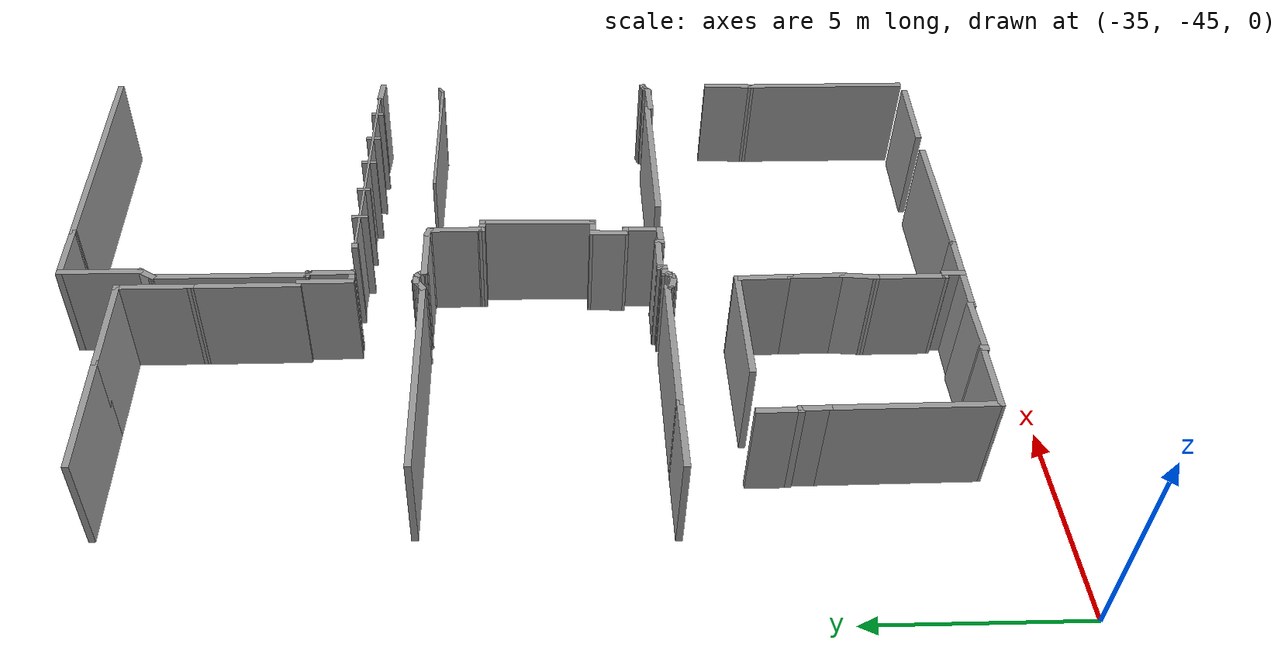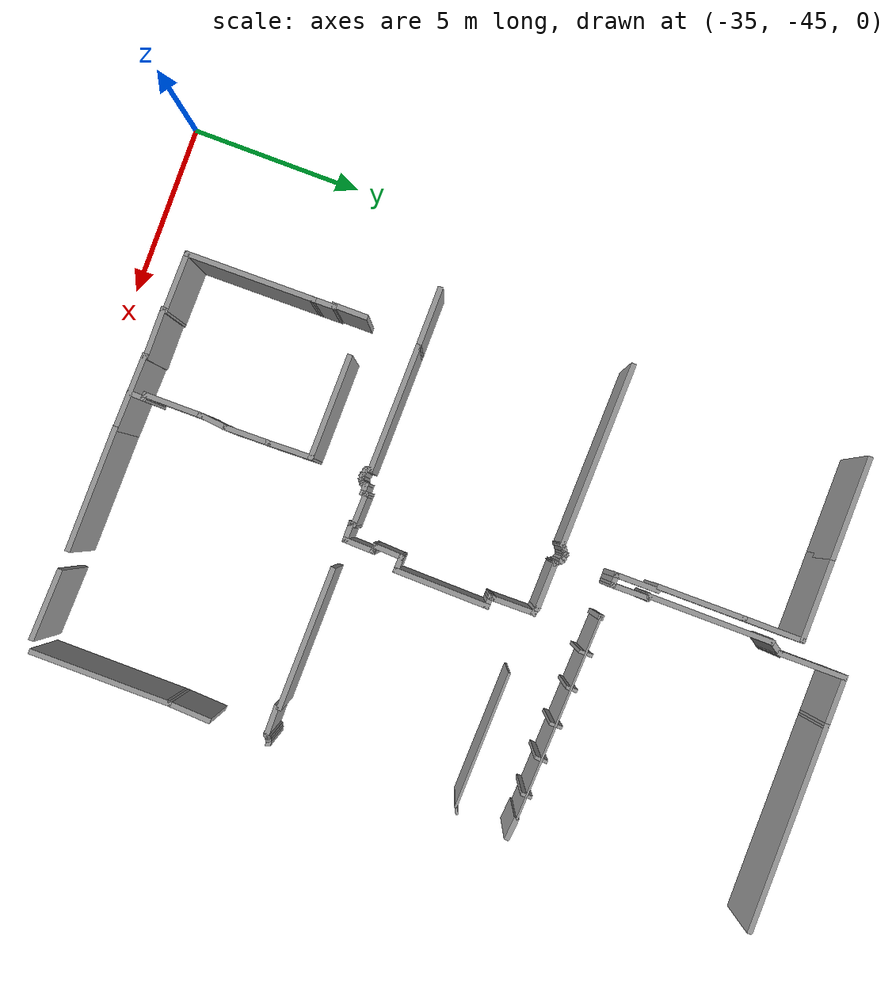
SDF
<sdf version="1.6">
 <model name="3_north">
  <pose>-14.229 -33.4428 0 0 -0 0</pose>
  <link name="Wall_10">
   <collision name="Wall_10_Collision">
    <geometry><box><size>1.85385 0.15 2.5</size></box></geometry>
    <pose>0 0 1.25 0 -0 0</pose>
   </collision>
   <visual name="Wall_10_Visual">
    <pose>0 0 1.25 0 -0 0</pose>
    <geometry><box><size>1.85385 0.15 2.5</size></box></geometry>
    <material>
     <script><uri>file://media/materials/scripts/gazebo.material</uri><name>Gazebo/Grey</name></script>
     <ambient>1 1 1 1</ambient>
    </material>
   </visual>
   <pose>-12.9757 8.5661 0 0 0 -1.57577</pose>
  </link>
  <link name="Wall_12">
   <collision name="Wall_12_Collision">
    <geometry><box><size>2.5971 0.15 2.5</size></box></geometry>
    <pose>0 0 1.25 0 -0 0</pose>
   </collision>
   <visual name="Wall_12_Visual">
    <pose>0 0 1.25 0 -0 0</pose>
    <geometry><box><size>2.5971 0.15 2.5</size></box></geometry>
    <material>
     <script><uri>file://media/materials/scripts/gazebo.material</uri><name>Gazebo/Grey</name></script>
     <ambient>1 1 1 1</ambient>
    </material>
   </visual>
   <pose>-12.98 6.49063 0 0 0 -1.5708</pose>
  </link>
  <link name="Wall_15">
   <collision name="Wall_15_Collision">
    <geometry><box><size>1.33926 0.15 2.5</size></box></geometry>
    <pose>0 0 1.25 0 -0 0</pose>
   </collision>
   <visual name="Wall_15_Visual">
    <pose>0 0 1.25 0 -0 0</pose>
    <geometry><box><size>1.33926 0.15 2.5</size></box></geometry>
    <material>
     <script><uri>file://media/materials/scripts/gazebo.material</uri><name>Gazebo/Grey</name></script>
     <ambient>1 1 1 1</ambient>
    </material>
   </visual>
   <pose>-12.8828 4.64959 0 0 0 -1.5708</pose>
  </link>
  <link name="Wall_16">
   <collision name="Wall_16_Collision">
    <geometry><box><size>0.447312 0.15 2.5</size></box></geometry>
    <pose>0 0 1.25 0 -0 0</pose>
   </collision>
   <visual name="Wall_16_Visual">
    <pose>0 0 1.25 0 -0 0</pose>
    <geometry><box><size>0.447312 0.15 2.5</size></box></geometry>
    <material>
     <script><uri>file://media/materials/scripts/gazebo.material</uri><name>Gazebo/Grey</name></script>
     <ambient>1 1 1 1</ambient>
    </material>
   </visual>
   <pose>-12.7341 4.05497 0 0 -0 0</pose>
  </link>
  <link name="Wall_17">
   <collision name="Wall_17_Collision">
    <geometry><box><size>1.15635 0.15 2.5</size></box></geometry>
    <pose>0 0 1.25 0 -0 0</pose>
   </collision>
   <visual name="Wall_17_Visual">
    <pose>0 0 1.25 0 -0 0</pose>
    <geometry><box><size>1.15635 0.15 2.5</size></box></geometry>
    <material>
     <script><uri>file://media/materials/scripts/gazebo.material</uri><name>Gazebo/Grey</name></script>
     <ambient>1 1 1 1</ambient>
    </material>
   </visual>
   <pose>-12.5883 4.55811 0 0 -0 1.57648</pose>
  </link>
  <link name="Wall_18">
   <collision name="Wall_18_Collision">
    <geometry><box><size>0.21738 0.15 2.5</size></box></geometry>
    <pose>0 0 1.25 0 -0 0</pose>
   </collision>
   <visual name="Wall_18_Visual">
    <pose>0 0 1.25 0 -0 0</pose>
    <geometry><box><size>0.21738 0.15 2.5</size></box></geometry>
    <material>
     <script><uri>file://media/materials/scripts/gazebo.material</uri><name>Gazebo/Grey</name></script>
     <ambient>1 1 1 1</ambient>
    </material>
   </visual>
   <pose>-12.6222 5.0744 0 0 -0 2.7406</pose>
  </link>
  <link name="Wall_19">
   <collision name="Wall_19_Collision">
    <geometry><box><size>3.70529 0.15 2.5</size></box></geometry>
    <pose>0 0 1.25 0 -0 0</pose>
   </collision>
   <visual name="Wall_19_Visual">
    <pose>0 0 1.25 0 -0 0</pose>
    <geometry><box><size>3.70529 0.15 2.5</size></box></geometry>
    <material>
     <script><uri>file://media/materials/scripts/gazebo.material</uri><name>Gazebo/Grey</name></script>
     <ambient>1 1 1 1</ambient>
    </material>
   </visual>
   <pose>-12.645 6.87177 0 0 -0 1.56616</pose>
  </link>
  <link name="Wall_21">
   <collision name="Wall_21_Collision">
    <geometry><box><size>0.537571 0.15 2.5</size></box></geometry>
    <pose>0 0 1.25 0 -0 0</pose>
   </collision>
   <visual name="Wall_21_Visual">
    <pose>0 0 1.25 0 -0 0</pose>
    <geometry><box><size>0.537571 0.15 2.5</size></box></geometry>
    <material>
     <script><uri>file://media/materials/scripts/gazebo.material</uri><name>Gazebo/Grey</name></script>
     <ambient>1 1 1 1</ambient>
    </material>
   </visual>
   <pose>-12.5295 8.81082 0 0 -0 0.984451</pose>
  </link>
  <link name="Wall_217">
   <collision name="Wall_217_Collision">
    <geometry><box><size>1.30874 0.15 2.5</size></box></geometry>
    <pose>0 0 1.25 0 -0 0</pose>
   </collision>
   <visual name="Wall_217_Visual">
    <pose>0 0 1.25 0 -0 0</pose>
    <geometry><box><size>1.30874 0.15 2.5</size></box></geometry>
    <material>
     <script><uri>file://media/materials/scripts/gazebo.material</uri><name>Gazebo/Grey</name></script>
     <ambient>1 1 1 1</ambient>
    </material>
   </visual>
   <pose>-5.35943 -5.56323 0 0 0 -1.62189</pose>
  </link>
  <link name="Wall_219">
   <collision name="Wall_219_Collision">
    <geometry><box><size>4.12839 0.15 2.5</size></box></geometry>
    <pose>0 0 1.25 0 -0 0</pose>
   </collision>
   <visual name="Wall_219_Visual">
    <pose>0 0 1.25 0 -0 0</pose>
    <geometry><box><size>4.12839 0.15 2.5</size></box></geometry>
    <material>
     <script><uri>file://media/materials/scripts/gazebo.material</uri><name>Gazebo/Grey</name></script>
     <ambient>1 1 1 1</ambient>
    </material>
   </visual>
   <pose>-5.39792 -8.13102 0 0 0 -1.57527</pose>
  </link>
  <link name="Wall_22">
   <collision name="Wall_22_Collision">
    <geometry><box><size>2.0167 0.15 2.5</size></box></geometry>
    <pose>0 0 1.25 0 -0 0</pose>
   </collision>
   <visual name="Wall_22_Visual">
    <pose>0 0 1.25 0 -0 0</pose>
    <geometry><box><size>2.0167 0.15 2.5</size></box></geometry>
    <material>
     <script><uri>file://media/materials/scripts/gazebo.material</uri><name>Gazebo/Grey</name></script>
     <ambient>1 1 1 1</ambient>
    </material>
   </visual>
   <pose>-12.4276 9.89901 0 0 -0 1.56944</pose>
  </link>
  <link name="Wall_223">
   <collision name="Wall_223_Collision">
    <geometry><box><size>2.09476 0.15 2.5</size></box></geometry>
    <pose>0 0 1.25 0 -0 0</pose>
   </collision>
   <visual name="Wall_223_Visual">
    <pose>0 0 1.25 0 -0 0</pose>
    <geometry><box><size>2.09476 0.15 2.5</size></box></geometry>
    <material>
     <script><uri>file://media/materials/scripts/gazebo.material</uri><name>Gazebo/Grey</name></script>
     <ambient>1 1 1 1</ambient>
    </material>
   </visual>
   <pose>-6.73842 -10.2062 0 0 -0 3.10659</pose>
  </link>
  <link name="Wall_225">
   <collision name="Wall_225_Collision">
    <geometry><box><size>3.64378 0.15 2.5</size></box></geometry>
    <pose>0 0 1.25 0 -0 0</pose>
   </collision>
   <visual name="Wall_225_Visual">
    <pose>0 0 1.25 0 -0 0</pose>
    <geometry><box><size>3.64378 0.15 2.5</size></box></geometry>
    <material>
     <script><uri>file://media/materials/scripts/gazebo.material</uri><name>Gazebo/Grey</name></script>
     <ambient>1 1 1 1</ambient>
    </material>
   </visual>
   <pose>-10.1222 -10.1306 0 0 -0 3.12644</pose>
  </link>
  <link name="Wall_227">
   <collision name="Wall_227_Collision">
    <geometry><box><size>2.25295 0.15 2.5</size></box></geometry>
    <pose>0 0 1.25 0 -0 0</pose>
   </collision>
   <visual name="Wall_227_Visual">
    <pose>0 0 1.25 0 -0 0</pose>
    <geometry><box><size>2.25295 0.15 2.5</size></box></geometry>
    <material>
     <script><uri>file://media/materials/scripts/gazebo.material</uri><name>Gazebo/Grey</name></script>
     <ambient>1 1 1 1</ambient>
    </material>
   </visual>
   <pose>-12.9577 -10.0663 0 0 -0 3.11282</pose>
  </link>
  <link name="Wall_228">
   <collision name="Wall_228_Collision">
    <geometry><box><size>0.187807 0.15 2.5</size></box></geometry>
    <pose>0 0 1.25 0 -0 0</pose>
   </collision>
   <visual name="Wall_228_Visual">
    <pose>0 0 1.25 0 -0 0</pose>
    <geometry><box><size>0.187807 0.15 2.5</size></box></geometry>
    <material>
     <script><uri>file://media/materials/scripts/gazebo.material</uri><name>Gazebo/Grey</name></script>
     <ambient>1 1 1 1</ambient>
    </material>
   </visual>
   <pose>-14.0087 -10.0172 0 0 -0 1.5708</pose>
  </link>
  <link name="Wall_229">
   <collision name="Wall_229_Collision">
    <geometry><box><size>1.5035 0.15 2.5</size></box></geometry>
    <pose>0 0 1.25 0 -0 0</pose>
   </collision>
   <visual name="Wall_229_Visual">
    <pose>0 0 1.25 0 -0 0</pose>
    <geometry><box><size>1.5035 0.15 2.5</size></box></geometry>
    <material>
     <script><uri>file://media/materials/scripts/gazebo.material</uri><name>Gazebo/Grey</name></script>
     <ambient>1 1 1 1</ambient>
    </material>
   </visual>
   <pose>-14.6855 -9.99828 0 0 -0 3.14159</pose>
  </link>
  <link name="Wall_230">
   <collision name="Wall_230_Collision">
    <geometry><box><size>0.20293 0.15 2.5</size></box></geometry>
    <pose>0 0 1.25 0 -0 0</pose>
   </collision>
   <visual name="Wall_230_Visual">
    <pose>0 0 1.25 0 -0 0</pose>
    <geometry><box><size>0.20293 0.15 2.5</size></box></geometry>
    <material>
     <script><uri>file://media/materials/scripts/gazebo.material</uri><name>Gazebo/Grey</name></script>
     <ambient>1 1 1 1</ambient>
    </material>
   </visual>
   <pose>-15.3622 -9.97182 0 0 -0 1.5708</pose>
  </link>
  <link name="Wall_231">
   <collision name="Wall_231_Collision">
    <geometry><box><size>1.79867 0.15 2.5</size></box></geometry>
    <pose>0 0 1.25 0 -0 0</pose>
   </collision>
   <visual name="Wall_231_Visual">
    <pose>0 0 1.25 0 -0 0</pose>
    <geometry><box><size>1.79867 0.15 2.5</size></box></geometry>
    <material>
     <script><uri>file://media/materials/scripts/gazebo.material</uri><name>Gazebo/Grey</name></script>
     <ambient>1 1 1 1</ambient>
    </material>
   </visual>
   <pose>-16.1864 -9.93023 0 0 -0 3.12325</pose>
  </link>
  <link name="Wall_232">
   <collision name="Wall_232_Collision">
    <geometry><box><size>3.79474 0.15 2.5</size></box></geometry>
    <pose>0 0 1.25 0 -0 0</pose>
   </collision>
   <visual name="Wall_232_Visual">
    <pose>0 0 1.25 0 -0 0</pose>
    <geometry><box><size>3.79474 0.15 2.5</size></box></geometry>
    <material>
     <script><uri>file://media/materials/scripts/gazebo.material</uri><name>Gazebo/Grey</name></script>
     <ambient>1 1 1 1</ambient>
    </material>
   </visual>
   <pose>-17.0258 -8.0928 0 0 -0 1.57909</pose>
  </link>
  <link name="Wall_234">
   <collision name="Wall_234_Collision">
    <geometry><box><size>0.739841 0.15 2.5</size></box></geometry>
    <pose>0 0 1.25 0 -0 0</pose>
   </collision>
   <visual name="Wall_234_Visual">
    <pose>0 0 1.25 0 -0 0</pose>
    <geometry><box><size>0.739841 0.15 2.5</size></box></geometry>
    <material>
     <script><uri>file://media/materials/scripts/gazebo.material</uri><name>Gazebo/Grey</name></script>
     <ambient>1 1 1 1</ambient>
    </material>
   </visual>
   <pose>-17.0447 -5.9756 0 0 -0 1.58362</pose>
  </link>
  <link name="Wall_235">
   <collision name="Wall_235_Collision">
    <geometry><box><size>0.187807 0.15 2.5</size></box></geometry>
    <pose>0 0 1.25 0 -0 0</pose>
   </collision>
   <visual name="Wall_235_Visual">
    <pose>0 0 1.25 0 -0 0</pose>
    <geometry><box><size>0.187807 0.15 2.5</size></box></geometry>
    <material>
     <script><uri>file://media/materials/scripts/gazebo.material</uri><name>Gazebo/Grey</name></script>
     <ambient>1 1 1 1</ambient>
    </material>
   </visual>
   <pose>-17.0673 -5.6807 0 0 -0 3.14159</pose>
  </link>
  <link name="Wall_236">
   <collision name="Wall_236_Collision">
    <geometry><box><size>1.04225 0.15 2.5</size></box></geometry>
    <pose>0 0 1.25 0 -0 0</pose>
   </collision>
   <visual name="Wall_236_Visual">
    <pose>0 0 1.25 0 -0 0</pose>
    <geometry><box><size>1.04225 0.15 2.5</size></box></geometry>
    <material>
     <script><uri>file://media/materials/scripts/gazebo.material</uri><name>Gazebo/Grey</name></script>
     <ambient>1 1 1 1</ambient>
    </material>
   </visual>
   <pose>-17.0862 -5.23458 0 0 -0 1.5708</pose>
  </link>
  <link name="Wall_238">
   <collision name="Wall_238_Collision">
    <geometry><box><size>3.06131 0.15 2.5</size></box></geometry>
    <pose>0 0 1.25 0 -0 0</pose>
   </collision>
   <visual name="Wall_238_Visual">
    <pose>0 0 1.25 0 -0 0</pose>
    <geometry><box><size>3.06131 0.15 2.5</size></box></geometry>
    <material>
     <script><uri>file://media/materials/scripts/gazebo.material</uri><name>Gazebo/Grey</name></script>
     <ambient>1 1 1 1</ambient>
    </material>
   </visual>
   <pose>-14.4511 -4.82626 0 0 0 -0.010389</pose>
  </link>
  <link name="Wall_239">
   <collision name="Wall_239_Collision">
    <geometry><box><size>1.37533 0.15 2.5</size></box></geometry>
    <pose>0 0 1.25 0 -0 0</pose>
   </collision>
   <visual name="Wall_239_Visual">
    <pose>0 0 1.25 0 -0 0</pose>
    <geometry><box><size>1.37533 0.15 2.5</size></box></geometry>
    <material>
     <script><uri>file://media/materials/scripts/gazebo.material</uri><name>Gazebo/Grey</name></script>
     <ambient>1 1 1 1</ambient>
    </material>
   </visual>
   <pose>-12.9804 -5.45386 0 0 0 -1.54611</pose>
  </link>
  <link name="Wall_24">
   <collision name="Wall_24_Collision">
    <geometry><box><size>1.57682 0.15 2.5</size></box></geometry>
    <pose>0 0 1.25 0 -0 0</pose>
   </collision>
   <visual name="Wall_24_Visual">
    <pose>0 0 1.25 0 -0 0</pose>
    <geometry><box><size>1.57682 0.15 2.5</size></box></geometry>
    <material>
     <script><uri>file://media/materials/scripts/gazebo.material</uri><name>Gazebo/Grey</name></script>
     <ambient>1 1 1 1</ambient>
    </material>
   </visual>
   <pose>-11.7195 10.8291 0 0 0 -0.004608</pose>
  </link>
  <link name="Wall_241">
   <collision name="Wall_241_Collision">
    <geometry><box><size>1.36749 0.15 2.5</size></box></geometry>
    <pose>0 0 1.25 0 -0 0</pose>
   </collision>
   <visual name="Wall_241_Visual">
    <pose>0 0 1.25 0 -0 0</pose>
    <geometry><box><size>1.36749 0.15 2.5</size></box></geometry>
    <material>
     <script><uri>file://media/materials/scripts/gazebo.material</uri><name>Gazebo/Grey</name></script>
     <ambient>1 1 1 1</ambient>
    </material>
   </visual>
   <pose>-12.9577 -6.67503 0 0 0 -1.55838</pose>
  </link>
  <link name="Wall_243">
   <collision name="Wall_243_Collision">
    <geometry><box><size>0.917439 0.15 2.5</size></box></geometry>
    <pose>0 0 1.25 0 -0 0</pose>
   </collision>
   <visual name="Wall_243_Visual">
    <pose>0 0 1.25 0 -0 0</pose>
    <geometry><box><size>0.917439 0.15 2.5</size></box></geometry>
    <material>
     <script><uri>file://media/materials/scripts/gazebo.material</uri><name>Gazebo/Grey</name></script>
     <ambient>1 1 1 1</ambient>
    </material>
   </visual>
   <pose>-12.9879 -7.66558 0 0 0 -1.66949</pose>
  </link>
  <link name="Wall_244">
   <collision name="Wall_244_Collision">
    <geometry><box><size>1.75303 0.15 2.5</size></box></geometry>
    <pose>0 0 1.25 0 -0 0</pose>
   </collision>
   <visual name="Wall_244_Visual">
    <pose>0 0 1.25 0 -0 0</pose>
    <geometry><box><size>1.75303 0.15 2.5</size></box></geometry>
    <material>
     <script><uri>file://media/materials/scripts/gazebo.material</uri><name>Gazebo/Grey</name></script>
     <ambient>1 1 1 1</ambient>
    </material>
   </visual>
   <pose>-13.0258 -8.84895 0 0 0 -1.5708</pose>
  </link>
  <link name="Wall_245">
   <collision name="Wall_245_Collision">
    <geometry><box><size>0.25613 0.15 2.5</size></box></geometry>
    <pose>0 0 1.25 0 -0 0</pose>
   </collision>
   <visual name="Wall_245_Visual">
    <pose>0 0 1.25 0 -0 0</pose>
    <geometry><box><size>0.25613 0.15 2.5</size></box></geometry>
    <material>
     <script><uri>file://media/materials/scripts/gazebo.material</uri><name>Gazebo/Grey</name></script>
     <ambient>1 1 1 1</ambient>
    </material>
   </visual>
   <pose>-12.9728 -9.65424 0 0 0 -0.071307</pose>
  </link>
  <link name="Wall_246">
   <collision name="Wall_246_Collision">
    <geometry><box><size>0.565948 0.15 2.5</size></box></geometry>
    <pose>0 0 1.25 0 -0 0</pose>
   </collision>
   <visual name="Wall_246_Visual">
    <pose>0 0 1.25 0 -0 0</pose>
    <geometry><box><size>0.565948 0.15 2.5</size></box></geometry>
    <material>
     <script><uri>file://media/materials/scripts/gazebo.material</uri><name>Gazebo/Grey</name></script>
     <ambient>1 1 1 1</ambient>
    </material>
   </visual>
   <pose>-12.9237 -9.86596 0 0 0 -1.58898</pose>
  </link>
  <link name="Wall_26">
   <collision name="Wall_26_Collision">
    <geometry><box><size>6.08081 0.15 2.5</size></box></geometry>
    <pose>0 0 1.25 0 -0 0</pose>
   </collision>
   <visual name="Wall_26_Visual">
    <pose>0 0 1.25 0 -0 0</pose>
    <geometry><box><size>6.08081 0.15 2.5</size></box></geometry>
    <material>
     <script><uri>file://media/materials/scripts/gazebo.material</uri><name>Gazebo/Grey</name></script>
     <ambient>1 1 1 1</ambient>
    </material>
   </visual>
   <pose>-8.04069 10.8225 0 0 0 -0.001109</pose>
  </link>
  <link name="Wall_329">
   <collision name="Wall_329_Collision">
    <geometry><box><size>5.35367 0.15 2.5</size></box></geometry>
    <pose>0 0 1.25 0 -0 0</pose>
   </collision>
   <visual name="Wall_329_Visual">
    <pose>0 0 1.25 0 -0 0</pose>
    <geometry><box><size>5.35367 0.15 2.5</size></box></geometry>
    <material>
     <script><uri>file://media/materials/scripts/gazebo.material</uri><name>Gazebo/Grey</name></script>
     <ambient>1 1 1 1</ambient>
    </material>
   </visual>
   <pose>-15.7561 2.45326 0 0 0 -0.020346</pose>
  </link>
  <link name="Wall_331">
   <collision name="Wall_331_Collision">
    <geometry><box><size>0.307343 0.15 2.5</size></box></geometry>
    <pose>0 0 1.25 0 -0 0</pose>
   </collision>
   <visual name="Wall_331_Visual">
    <pose>0 0 1.25 0 -0 0</pose>
    <geometry><box><size>0.307343 0.15 2.5</size></box></geometry>
    <material>
     <script><uri>file://media/materials/scripts/gazebo.material</uri><name>Gazebo/Grey</name></script>
     <ambient>1 1 1 1</ambient>
    </material>
   </visual>
   <pose>-13.0907 2.44569 0 0 -0 0.614663</pose>
  </link>
  <link name="Wall_332">
   <collision name="Wall_332_Collision">
    <geometry><box><size>0.269557 0.15 2.5</size></box></geometry>
    <pose>0 0 1.25 0 -0 0</pose>
   </collision>
   <visual name="Wall_332_Visual">
    <pose>0 0 1.25 0 -0 0</pose>
    <geometry><box><size>0.269557 0.15 2.5</size></box></geometry>
    <material>
     <script><uri>file://media/materials/scripts/gazebo.material</uri><name>Gazebo/Grey</name></script>
     <ambient>1 1 1 1</ambient>
    </material>
   </visual>
   <pose>-12.9773 2.52509 0 0 -0 0.605545</pose>
  </link>
  <link name="Wall_333">
   <collision name="Wall_333_Collision">
    <geometry><box><size>0.233176 0.15 2.5</size></box></geometry>
    <pose>0 0 1.25 0 -0 0</pose>
   </collision>
   <visual name="Wall_333_Visual">
    <pose>0 0 1.25 0 -0 0</pose>
    <geometry><box><size>0.233176 0.15 2.5</size></box></geometry>
    <material>
     <script><uri>file://media/materials/scripts/gazebo.material</uri><name>Gazebo/Grey</name></script>
     <ambient>1 1 1 1</ambient>
    </material>
   </visual>
   <pose>-12.8866 2.55912 0 0 -0 0</pose>
  </link>
  <link name="Wall_334">
   <collision name="Wall_334_Collision">
    <geometry><box><size>0.276753 0.15 2.5</size></box></geometry>
    <pose>0 0 1.25 0 -0 0</pose>
   </collision>
   <visual name="Wall_334_Visual">
    <pose>0 0 1.25 0 -0 0</pose>
    <geometry><box><size>0.276753 0.15 2.5</size></box></geometry>
    <material>
     <script><uri>file://media/materials/scripts/gazebo.material</uri><name>Gazebo/Grey</name></script>
     <ambient>1 1 1 1</ambient>
    </material>
   </visual>
   <pose>-12.7845 2.54021 0 0 0 -0.302885</pose>
  </link>
  <link name="Wall_335">
   <collision name="Wall_335_Collision">
    <geometry><box><size>0.268113 0.15 2.5</size></box></geometry>
    <pose>0 0 1.25 0 -0 0</pose>
   </collision>
   <visual name="Wall_335_Visual">
    <pose>0 0 1.25 0 -0 0</pose>
    <geometry><box><size>0.268113 0.15 2.5</size></box></geometry>
    <material>
     <script><uri>file://media/materials/scripts/gazebo.material</uri><name>Gazebo/Grey</name></script>
     <ambient>1 1 1 1</ambient>
    </material>
   </visual>
   <pose>-12.6862 2.47594 0 0 0 -0.876058</pose>
  </link>
  <link name="Wall_336">
   <collision name="Wall_336_Collision">
    <geometry><box><size>0.204526 0.15 2.5</size></box></geometry>
    <pose>0 0 1.25 0 -0 0</pose>
   </collision>
   <visual name="Wall_336_Visual">
    <pose>0 0 1.25 0 -0 0</pose>
    <geometry><box><size>0.204526 0.15 2.5</size></box></geometry>
    <material>
     <script><uri>file://media/materials/scripts/gazebo.material</uri><name>Gazebo/Grey</name></script>
     <ambient>1 1 1 1</ambient>
    </material>
   </visual>
   <pose>-12.6333 2.40789 0 0 0 -0.982794</pose>
  </link>
  <link name="Wall_337">
   <collision name="Wall_337_Collision">
    <geometry><box><size>1.48872 0.15 2.5</size></box></geometry>
    <pose>0 0 1.25 0 -0 0</pose>
   </collision>
   <visual name="Wall_337_Visual">
    <pose>0 0 1.25 0 -0 0</pose>
    <geometry><box><size>1.48872 0.15 2.5</size></box></geometry>
    <material>
     <script><uri>file://media/materials/scripts/gazebo.material</uri><name>Gazebo/Grey</name></script>
     <ambient>1 1 1 1</ambient>
    </material>
   </visual>
   <pose>-11.9489 2.37008 0 0 0 -0.022595</pose>
  </link>
  <link name="Wall_338">
   <collision name="Wall_338_Collision">
    <geometry><box><size>0.300661 0.15 2.5</size></box></geometry>
    <pose>0 0 1.25 0 -0 0</pose>
   </collision>
   <visual name="Wall_338_Visual">
    <pose>0 0 1.25 0 -0 0</pose>
    <geometry><box><size>0.300661 0.15 2.5</size></box></geometry>
    <material>
     <script><uri>file://media/materials/scripts/gazebo.material</uri><name>Gazebo/Grey</name></script>
     <ambient>1 1 1 1</ambient>
    </material>
   </visual>
   <pose>-11.2079 2.33227 0 0 0 -0.305879</pose>
  </link>
  <link name="Wall_339">
   <collision name="Wall_339_Collision">
    <geometry><box><size>1.29936 0.15 2.5</size></box></geometry>
    <pose>0 0 1.25 0 -0 0</pose>
   </collision>
   <visual name="Wall_339_Visual">
    <pose>0 0 1.25 0 -0 0</pose>
    <geometry><box><size>1.29936 0.15 2.5</size></box></geometry>
    <material>
     <script><uri>file://media/materials/scripts/gazebo.material</uri><name>Gazebo/Grey</name></script>
     <ambient>1 1 1 1</ambient>
    </material>
   </visual>
   <pose>-11.1323 1.73492 0 0 0 -1.56422</pose>
  </link>
  <link name="Wall_34">
   <collision name="Wall_34_Collision">
    <geometry><box><size>0.651113 0.15 2.5</size></box></geometry>
    <pose>0 0 1.25 0 -0 0</pose>
   </collision>
   <visual name="Wall_34_Visual">
    <pose>0 0 1.25 0 -0 0</pose>
    <geometry><box><size>0.651113 0.15 2.5</size></box></geometry>
    <material>
     <script><uri>file://media/materials/scripts/gazebo.material</uri><name>Gazebo/Grey</name></script>
     <ambient>1 1 1 1</ambient>
    </material>
   </visual>
   <pose>-5.42267 3.77591 0 0 -0 3.05093</pose>
  </link>
  <link name="Wall_340">
   <collision name="Wall_340_Collision">
    <geometry><box><size>0.25613 0.15 2.5</size></box></geometry>
    <pose>0 0 1.25 0 -0 0</pose>
   </collision>
   <visual name="Wall_340_Visual">
    <pose>0 0 1.25 0 -0 0</pose>
    <geometry><box><size>0.25613 0.15 2.5</size></box></geometry>
    <material>
     <script><uri>file://media/materials/scripts/gazebo.material</uri><name>Gazebo/Grey</name></script>
     <ambient>1 1 1 1</ambient>
    </material>
   </visual>
   <pose>-11.1323 1.10732 0 0 0 -1.6421</pose>
  </link>
  <link name="Wall_341">
   <collision name="Wall_341_Collision">
    <geometry><box><size>0.414758 0.15 2.5</size></box></geometry>
    <pose>0 0 1.25 0 -0 0</pose>
   </collision>
   <visual name="Wall_341_Visual">
    <pose>0 0 1.25 0 -0 0</pose>
    <geometry><box><size>0.414758 0.15 2.5</size></box></geometry>
    <material>
     <script><uri>file://media/materials/scripts/gazebo.material</uri><name>Gazebo/Grey</name></script>
     <ambient>1 1 1 1</ambient>
    </material>
   </visual>
   <pose>-11.0038 1.05061 0 0 0 -0.028564</pose>
  </link>
  <link name="Wall_344">
   <collision name="Wall_344_Collision">
    <geometry><box><size>2.80269 0.15 2.5</size></box></geometry>
    <pose>0 0 1.25 0 -0 0</pose>
   </collision>
   <visual name="Wall_344_Visual">
    <pose>0 0 1.25 0 -0 0</pose>
    <geometry><box><size>2.80269 0.15 2.5</size></box></geometry>
    <material>
     <script><uri>file://media/materials/scripts/gazebo.material</uri><name>Gazebo/Grey</name></script>
     <ambient>1 1 1 1</ambient>
    </material>
   </visual>
   <pose>-10.8925 -0.280252 0 0 0 -1.59047</pose>
  </link>
  <link name="Wall_345">
   <collision name="Wall_345_Collision">
    <geometry><box><size>0.541304 0.15 2.5</size></box></geometry>
    <pose>0 0 1.25 0 -0 0</pose>
   </collision>
   <visual name="Wall_345_Visual">
    <pose>0 0 1.25 0 -0 0</pose>
    <geometry><box><size>0.541304 0.15 2.5</size></box></geometry>
    <material>
     <script><uri>file://media/materials/scripts/gazebo.material</uri><name>Gazebo/Grey</name></script>
     <ambient>1 1 1 1</ambient>
    </material>
   </visual>
   <pose>-11.1143 -1.60199 0 0 -0 3.11937</pose>
  </link>
  <link name="Wall_346">
   <collision name="Wall_346_Collision">
    <geometry><box><size>0.924694 0.15 2.5</size></box></geometry>
    <pose>0 0 1.25 0 -0 0</pose>
   </collision>
   <visual name="Wall_346_Visual">
    <pose>0 0 1.25 0 -0 0</pose>
    <geometry><box><size>0.924694 0.15 2.5</size></box></geometry>
    <material>
     <script><uri>file://media/materials/scripts/gazebo.material</uri><name>Gazebo/Grey</name></script>
     <ambient>1 1 1 1</ambient>
    </material>
   </visual>
   <pose>-11.3273 -1.9846 0 0 0 -1.61571</pose>
  </link>
  <link name="Wall_347">
   <collision name="Wall_347_Collision">
    <geometry><box><size>0.28913 0.15 2.5</size></box></geometry>
    <pose>0 0 1.25 0 -0 0</pose>
   </collision>
   <visual name="Wall_347_Visual">
    <pose>0 0 1.25 0 -0 0</pose>
    <geometry><box><size>0.28913 0.15 2.5</size></box></geometry>
    <material>
     <script><uri>file://media/materials/scripts/gazebo.material</uri><name>Gazebo/Grey</name></script>
     <ambient>1 1 1 1</ambient>
    </material>
   </visual>
   <pose>-11.2752 -2.3759 0 0 0 -0.062419</pose>
  </link>
  <link name="Wall_350">
   <collision name="Wall_350_Collision">
    <geometry><box><size>0.959392 0.15 2.5</size></box></geometry>
    <pose>0 0 1.25 0 -0 0</pose>
   </collision>
   <visual name="Wall_350_Visual">
    <pose>0 0 1.25 0 -0 0</pose>
    <geometry><box><size>0.959392 0.15 2.5</size></box></geometry>
    <material>
     <script><uri>file://media/materials/scripts/gazebo.material</uri><name>Gazebo/Grey</name></script>
     <ambient>1 1 1 1</ambient>
    </material>
   </visual>
   <pose>-11.206 -2.78259 0 0 0 -1.59883</pose>
  </link>
  <link name="Wall_351">
   <collision name="Wall_351_Collision">
    <geometry><box><size>0.61131 0.15 2.5</size></box></geometry>
    <pose>0 0 1.25 0 -0 0</pose>
   </collision>
   <visual name="Wall_351_Visual">
    <pose>0 0 1.25 0 -0 0</pose>
    <geometry><box><size>0.61131 0.15 2.5</size></box></geometry>
    <material>
     <script><uri>file://media/materials/scripts/gazebo.material</uri><name>Gazebo/Grey</name></script>
     <ambient>1 1 1 1</ambient>
    </material>
   </visual>
   <pose>-11.4479 -3.19091 0 0 0 -3.1252</pose>
  </link>
  <link name="Wall_352">
   <collision name="Wall_352_Collision">
    <geometry><box><size>0.225991 0.15 2.5</size></box></geometry>
    <pose>0 0 1.25 0 -0 0</pose>
   </collision>
   <visual name="Wall_352_Visual">
    <pose>0 0 1.25 0 -0 0</pose>
    <geometry><box><size>0.225991 0.15 2.5</size></box></geometry>
    <material>
     <script><uri>file://media/materials/scripts/gazebo.material</uri><name>Gazebo/Grey</name></script>
     <ambient>1 1 1 1</ambient>
    </material>
   </visual>
   <pose>-11.6823 -3.15688 0 0 -0 1.67047</pose>
  </link>
  <link name="Wall_353">
   <collision name="Wall_353_Collision">
    <geometry><box><size>1.04254 0.15 2.5</size></box></geometry>
    <pose>0 0 1.25 0 -0 0</pose>
   </collision>
   <visual name="Wall_353_Visual">
    <pose>0 0 1.25 0 -0 0</pose>
    <geometry><box><size>1.04254 0.15 2.5</size></box></geometry>
    <material>
     <script><uri>file://media/materials/scripts/gazebo.material</uri><name>Gazebo/Grey</name></script>
     <ambient>1 1 1 1</ambient>
    </material>
   </visual>
   <pose>-12.1323 -3.10773 0 0 -0 3.11617</pose>
  </link>
  <link name="Wall_354">
   <collision name="Wall_354_Collision">
    <geometry><box><size>0.240737 0.15 2.5</size></box></geometry>
    <pose>0 0 1.25 0 -0 0</pose>
   </collision>
   <visual name="Wall_354_Visual">
    <pose>0 0 1.25 0 -0 0</pose>
    <geometry><box><size>0.240737 0.15 2.5</size></box></geometry>
    <material>
     <script><uri>file://media/materials/scripts/gazebo.material</uri><name>Gazebo/Grey</name></script>
     <ambient>1 1 1 1</ambient>
    </material>
   </visual>
   <pose>-12.5784 -3.14176 0 0 0 -1.5708</pose>
  </link>
  <link name="Wall_355">
   <collision name="Wall_355_Collision">
    <geometry><box><size>0.384405 0.15 2.5</size></box></geometry>
    <pose>0 0 1.25 0 -0 0</pose>
   </collision>
   <visual name="Wall_355_Visual">
    <pose>0 0 1.25 0 -0 0</pose>
    <geometry><box><size>0.384405 0.15 2.5</size></box></geometry>
    <material>
     <script><uri>file://media/materials/scripts/gazebo.material</uri><name>Gazebo/Grey</name></script>
     <ambient>1 1 1 1</ambient>
    </material>
   </visual>
   <pose>-12.6956 -3.18713 0 0 -0 3.14159</pose>
  </link>
  <link name="Wall_356">
   <collision name="Wall_356_Collision">
    <geometry><box><size>0.241052 0.15 2.5</size></box></geometry>
    <pose>0 0 1.25 0 -0 0</pose>
   </collision>
   <visual name="Wall_356_Visual">
    <pose>0 0 1.25 0 -0 0</pose>
    <geometry><box><size>0.241052 0.15 2.5</size></box></geometry>
    <material>
     <script><uri>file://media/materials/scripts/gazebo.material</uri><name>Gazebo/Grey</name></script>
     <ambient>1 1 1 1</ambient>
    </material>
   </visual>
   <pose>-12.8166 -3.2325 0 0 0 -1.65394</pose>
  </link>
  <link name="Wall_357">
   <collision name="Wall_357_Collision">
    <geometry><box><size>0.251729 0.15 2.5</size></box></geometry>
    <pose>0 0 1.25 0 -0 0</pose>
   </collision>
   <visual name="Wall_357_Visual">
    <pose>0 0 1.25 0 -0 0</pose>
    <geometry><box><size>0.251729 0.15 2.5</size></box></geometry>
    <material>
     <script><uri>file://media/materials/scripts/gazebo.material</uri><name>Gazebo/Grey</name></script>
     <ambient>1 1 1 1</ambient>
    </material>
   </visual>
   <pose>-12.8582 -3.31189 0 0 0 -2.40878</pose>
  </link>
  <link name="Wall_358">
   <collision name="Wall_358_Collision">
    <geometry><box><size>0.287983 0.15 2.5</size></box></geometry>
    <pose>0 0 1.25 0 -0 0</pose>
   </collision>
   <visual name="Wall_358_Visual">
    <pose>0 0 1.25 0 -0 0</pose>
    <geometry><box><size>0.287983 0.15 2.5</size></box></geometry>
    <material>
     <script><uri>file://media/materials/scripts/gazebo.material</uri><name>Gazebo/Grey</name></script>
     <ambient>1 1 1 1</ambient>
    </material>
   </visual>
   <pose>-12.964 -3.35726 0 0 0 -2.97644</pose>
  </link>
  <link name="Wall_359">
   <collision name="Wall_359_Collision">
    <geometry><box><size>0.315144 0.15 2.5</size></box></geometry>
    <pose>0 0 1.25 0 -0 0</pose>
   </collision>
   <visual name="Wall_359_Visual">
    <pose>0 0 1.25 0 -0 0</pose>
    <geometry><box><size>0.315144 0.15 2.5</size></box></geometry>
    <material>
     <script><uri>file://media/materials/scripts/gazebo.material</uri><name>Gazebo/Grey</name></script>
     <ambient>1 1 1 1</ambient>
    </material>
   </visual>
   <pose>-13.1115 -3.34592 0 0 -0 2.86329</pose>
  </link>
  <link name="Wall_36">
   <collision name="Wall_36_Collision">
    <geometry><box><size>5.98453 0.06 2.5</size></box></geometry>
    <pose>0 0 1.25 0 -0 0</pose>
   </collision>
   <visual name="Wall_36_Visual">
    <pose>0 0 1.25 0 -0 0</pose>
    <geometry><box><size>5.98453 0.06 2.5</size></box></geometry>
    <material>
     <script><uri>file://media/materials/scripts/gazebo.material</uri><name>Gazebo/Grey</name></script>
     <ambient>1 1 1 1</ambient>
    </material>
   </visual>
   <pose>-8.69585 3.93675 0 0 0 -0.039818</pose>
  </link>
  <link name="Wall_360">
   <collision name="Wall_360_Collision">
    <geometry><box><size>0.230379 0.15 2.5</size></box></geometry>
    <pose>0 0 1.25 0 -0 0</pose>
   </collision>
   <visual name="Wall_360_Visual">
    <pose>0 0 1.25 0 -0 0</pose>
    <geometry><box><size>0.230379 0.15 2.5</size></box></geometry>
    <material>
     <script><uri>file://media/materials/scripts/gazebo.material</uri><name>Gazebo/Grey</name></script>
     <ambient>1 1 1 1</ambient>
    </material>
   </visual>
   <pose>-13.2173 -3.29299 0 0 -0 2.28963</pose>
  </link>
  <link name="Wall_361">
   <collision name="Wall_361_Collision">
    <geometry><box><size>0.195994 0.15 2.5</size></box></geometry>
    <pose>0 0 1.25 0 -0 0</pose>
   </collision>
   <visual name="Wall_361_Visual">
    <pose>0 0 1.25 0 -0 0</pose>
    <geometry><box><size>0.195994 0.15 2.5</size></box></geometry>
    <material>
     <script><uri>file://media/materials/scripts/gazebo.material</uri><name>Gazebo/Grey</name></script>
     <ambient>1 1 1 1</ambient>
    </material>
   </visual>
   <pose>-13.2476 -3.24006 0 0 -0 1.73595</pose>
  </link>
  <link name="Wall_364">
   <collision name="Wall_364_Collision">
    <geometry><box><size>3.72738 0.15 2.5</size></box></geometry>
    <pose>0 0 1.25 0 -0 0</pose>
   </collision>
   <visual name="Wall_364_Visual">
    <pose>0 0 1.25 0 -0 0</pose>
    <geometry><box><size>3.72738 0.15 2.5</size></box></geometry>
    <material>
     <script><uri>file://media/materials/scripts/gazebo.material</uri><name>Gazebo/Grey</name></script>
     <ambient>1 1 1 1</ambient>
    </material>
   </visual>
   <pose>-15.0301 -3.17953 0 0 -0 3.12689</pose>
  </link>
  <link name="Wall_366">
   <collision name="Wall_366_Collision">
    <geometry><box><size>1.82014 0.15 2.5</size></box></geometry>
    <pose>0 0 1.25 0 -0 0</pose>
   </collision>
   <visual name="Wall_366_Visual">
    <pose>0 0 1.25 0 -0 0</pose>
    <geometry><box><size>1.82014 0.15 2.5</size></box></geometry>
    <material>
     <script><uri>file://media/materials/scripts/gazebo.material</uri><name>Gazebo/Grey</name></script>
     <ambient>1 1 1 1</ambient>
    </material>
   </visual>
   <pose>-17.6536 -3.14666 0 0 -0 3.13372</pose>
  </link>
  <link name="Wall_372">
   <collision name="Wall_372_Collision">
    <geometry><box><size>4.14887 0.15 2.5</size></box></geometry>
    <pose>0 0 1.25 0 -0 0</pose>
   </collision>
   <visual name="Wall_372_Visual">
    <pose>0 0 1.25 0 -0 0</pose>
    <geometry><box><size>4.14887 0.15 2.5</size></box></geometry>
    <material>
     <script><uri>file://media/materials/scripts/gazebo.material</uri><name>Gazebo/Grey</name></script>
     <ambient>1 1 1 1</ambient>
    </material>
   </visual>
   <pose>-8.33304 -3.25758 0 0 0 -0.013087</pose>
  </link>
  <link name="Wall_375">
   <collision name="Wall_375_Collision">
    <geometry><box><size>0.916171 0.15 2.5</size></box></geometry>
    <pose>0 0 1.25 0 -0 0</pose>
   </collision>
   <visual name="Wall_375_Visual">
    <pose>0 0 1.25 0 -0 0</pose>
    <geometry><box><size>0.916171 0.15 2.5</size></box></geometry>
    <material>
     <script><uri>file://media/materials/scripts/gazebo.material</uri><name>Gazebo/Grey</name></script>
     <ambient>1 1 1 1</ambient>
    </material>
   </visual>
   <pose>-5.90121 -3.36006 0 0 -0 0.007463</pose>
  </link>
  <link name="Wall_376">
   <collision name="Wall_376_Collision">
    <geometry><box><size>0.292938 0.15 2.5</size></box></geometry>
    <pose>0 0 1.25 0 -0 0</pose>
   </collision>
   <visual name="Wall_376_Visual">
    <pose>0 0 1.25 0 -0 0</pose>
    <geometry><box><size>0.292938 0.15 2.5</size></box></geometry>
    <material>
     <script><uri>file://media/materials/scripts/gazebo.material</uri><name>Gazebo/Grey</name></script>
     <ambient>1 1 1 1</ambient>
    </material>
   </visual>
   <pose>-5.46382 -3.31146 0 0 -0 0.699893</pose>
  </link>
  <link name="Wall_377">
   <collision name="Wall_377_Collision">
    <geometry><box><size>0.240402 0.15 2.5</size></box></geometry>
    <pose>0 0 1.25 0 -0 0</pose>
   </collision>
   <visual name="Wall_377_Visual">
    <pose>0 0 1.25 0 -0 0</pose>
    <geometry><box><size>0.240402 0.15 2.5</size></box></geometry>
    <material>
     <script><uri>file://media/materials/scripts/gazebo.material</uri><name>Gazebo/Grey</name></script>
     <ambient>1 1 1 1</ambient>
    </material>
   </visual>
   <pose>-5.36663 -3.25142 0 0 -0 0.321751</pose>
  </link>
  <link name="Wall_38">
   <collision name="Wall_38_Collision">
    <geometry><box><size>0.15 0.15 2.5</size></box></geometry>
    <pose>0 0 1.25 0 -0 0</pose>
   </collision>
   <visual name="Wall_38_Visual">
    <pose>0 0 1.25 0 -0 0</pose>
    <geometry><box><size>0.15 0.15 2.5</size></box></geometry>
    <material>
     <script><uri>file://media/materials/scripts/gazebo.material</uri><name>Gazebo/Grey</name></script>
     <ambient>1 1 1 1</ambient>
    </material>
   </visual>
   <pose>-11.6558 4.05468 0 0 -0 0</pose>
  </link>
  <link name="Wall_40">
   <collision name="Wall_40_Collision">
    <geometry><box><size>0.393399 0.1 2.5</size></box></geometry>
    <pose>0 0 1.25 0 -0 0</pose>
   </collision>
   <visual name="Wall_40_Visual">
    <pose>0 0 1.25 0 -0 0</pose>
    <geometry><box><size>0.393399 0.1 2.5</size></box></geometry>
    <material>
     <script><uri>file://media/materials/scripts/gazebo.material</uri><name>Gazebo/Grey</name></script>
     <ambient>1 1 1 1</ambient>
    </material>
   </visual>
   <pose>-10.595 4.01051 0 0 -0 1.5708</pose>
  </link>
  <link name="Wall_42">
   <collision name="Wall_42_Collision">
    <geometry><box><size>0.323798 0.1 2.5</size></box></geometry>
    <pose>0 0 1.25 0 -0 0</pose>
   </collision>
   <visual name="Wall_42_Visual">
    <pose>0 0 1.25 0 -0 0</pose>
    <geometry><box><size>0.323798 0.1 2.5</size></box></geometry>
    <material>
     <script><uri>file://media/materials/scripts/gazebo.material</uri><name>Gazebo/Grey</name></script>
     <ambient>1 1 1 1</ambient>
    </material>
   </visual>
   <pose>-9.55346 3.98601 0 0 -0 1.54848</pose>
  </link>
  <link name="Wall_44">
   <collision name="Wall_44_Collision">
    <geometry><box><size>0.369012 0.1 2.5</size></box></geometry>
    <pose>0 0 1.25 0 -0 0</pose>
   </collision>
   <visual name="Wall_44_Visual">
    <pose>0 0 1.25 0 -0 0</pose>
    <geometry><box><size>0.369012 0.1 2.5</size></box></geometry>
    <material>
     <script><uri>file://media/materials/scripts/gazebo.material</uri><name>Gazebo/Grey</name></script>
     <ambient>1 1 1 1</ambient>
    </material>
   </visual>
   <pose>-8.47946 3.92351 0 0 -0 1.55221</pose>
  </link>
  <link name="Wall_46">
   <collision name="Wall_46_Collision">
    <geometry><box><size>0.363477 0.1 2.5</size></box></geometry>
    <pose>0 0 1.25 0 -0 0</pose>
   </collision>
   <visual name="Wall_46_Visual">
    <pose>0 0 1.25 0 -0 0</pose>
    <geometry><box><size>0.363477 0.1 2.5</size></box></geometry>
    <material>
     <script><uri>file://media/materials/scripts/gazebo.material</uri><name>Gazebo/Grey</name></script>
     <ambient>1 1 1 1</ambient>
    </material>
   </visual>
   <pose>-7.47296 3.87151 0 0 -0 1.53279</pose>
  </link>
  <link name="Wall_48">
   <collision name="Wall_48_Collision">
    <geometry><box><size>0.318679 0.1 2.5</size></box></geometry>
    <pose>0 0 1.25 0 -0 0</pose>
   </collision>
   <visual name="Wall_48_Visual">
    <pose>0 0 1.25 0 -0 0</pose>
    <geometry><box><size>0.318679 0.1 2.5</size></box></geometry>
    <material>
     <script><uri>file://media/materials/scripts/gazebo.material</uri><name>Gazebo/Grey</name></script>
     <ambient>1 1 1 1</ambient>
    </material>
   </visual>
   <pose>-6.41646 3.83451 0 0 -0 1.54797</pose>
  </link>
  <link name="Wall_484">
   <collision name="Wall_484_Collision">
    <geometry><box><size>3.95011 0.07 2.5</size></box></geometry>
    <pose>0 0 1.25 0 -0 0</pose>
   </collision>
   <visual name="Wall_484_Visual">
    <pose>0 0 1.25 0 -0 0</pose>
    <geometry><box><size>3.95011 0.07 2.5</size></box></geometry>
    <material>
     <script><uri>file://media/materials/scripts/gazebo.material</uri><name>Gazebo/Grey</name></script>
     <ambient>1 1 1 1</ambient>
    </material>
   </visual>
   <pose>-7.40446 2.19601 0 0 0 -0.026805</pose>
  </link>
  <link name="Wall_486">
   <collision name="Wall_486_Collision">
    <geometry><box><size>0.248076 0.07 2.5</size></box></geometry>
    <pose>0 0 1.25 0 -0 0</pose>
   </collision>
   <visual name="Wall_486_Visual">
    <pose>0 0 1.25 0 -0 0</pose>
    <geometry><box><size>0.248076 0.07 2.5</size></box></geometry>
    <material>
     <script><uri>file://media/materials/scripts/gazebo.material</uri><name>Gazebo/Grey</name></script>
     <ambient>1 1 1 1</ambient>
    </material>
   </visual>
   <pose>-5.38696 2.18701 0 0 -0 0.503827</pose>
  </link>
  <link name="Wall_7">
   <collision name="Wall_7_Collision">
    <geometry><box><size>3 0.15 2.5</size></box></geometry>
    <pose>0 0 1.25 0 -0 0</pose>
   </collision>
   <visual name="Wall_7_Visual">
    <pose>0 0 1.25 0 -0 0</pose>
    <geometry><box><size>3 0.15 2.5</size></box></geometry>
    <material>
     <script><uri>file://media/materials/scripts/gazebo.material</uri><name>Gazebo/Grey</name></script>
     <ambient>1 1 1 1</ambient>
    </material>
   </visual>
   <pose>-16.798 9.41229 0 0 -0 0</pose>
  </link>
  <link name="Wall_9">
   <collision name="Wall_9_Collision">
    <geometry><box><size>2.54574 0.15 2.5</size></box></geometry>
    <pose>0 0 1.25 0 -0 0</pose>
   </collision>
   <visual name="Wall_9_Visual">
    <pose>0 0 1.25 0 -0 0</pose>
    <geometry><box><size>2.54574 0.15 2.5</size></box></geometry>
    <material>
     <script><uri>file://media/materials/scripts/gazebo.material</uri><name>Gazebo/Grey</name></script>
     <ambient>1 1 1 1</ambient>
    </material>
   </visual>
   <pose>-14.1751 9.41229 0 0 -0 0</pose>
  </link>
  <static>1</static>
 </model>
</sdf>
